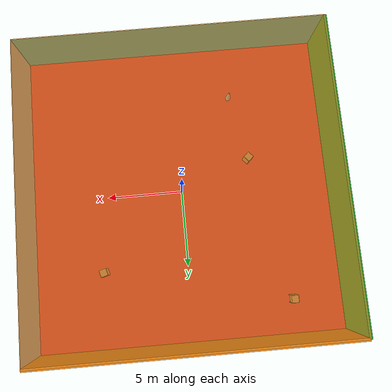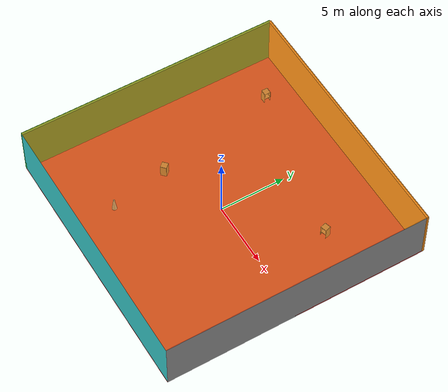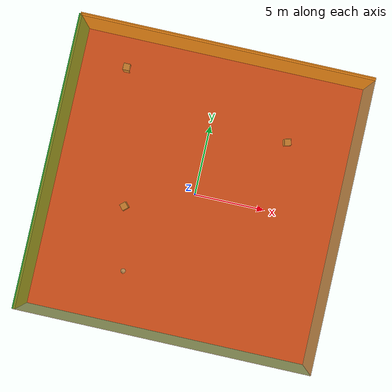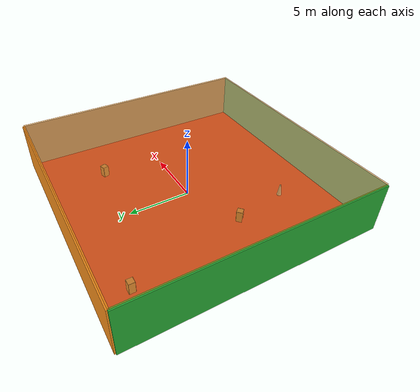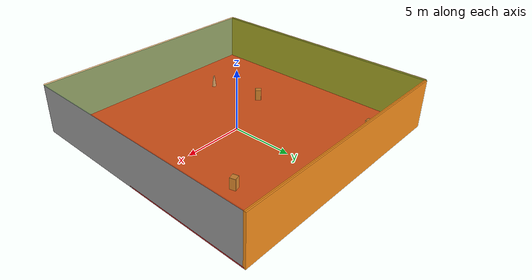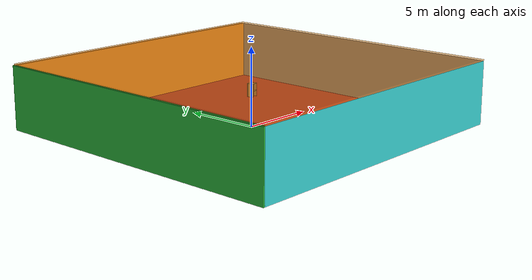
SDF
<sdf version="1.4">
 <world name="default">
  <physics type="ode">
   <max_step_size>0.001</max_step_size>
   <real_time_factor>1</real_time_factor>
   <real_time_update_rate>1000</real_time_update_rate>
   <gravity>0 0 -9.8</gravity>
  </physics>
  <scene><ambient>0.4 0.4 0.4 1</ambient><background>0.7 0.7 0.7 1</background><shadows>1</shadows></scene>
  <model name="Surrounding">
   <static>1</static>
   <link name="Ceiling">
    <collision name="Ceiling_Collision"><geometry><box><size>20 20 0.1</size></box></geometry></collision>
    <visual name="Ceiling_Visual">
     <geometry><box><size>20 20 0.1</size></box></geometry>
     <material>
      <script>
       <uri>file://media/materials/scripts/gazebo.material</uri>
       <name>Gazebo/OrangeTransparent</name>
      </script>
     </material>
    </visual>
    <pose>0 0 4.05 0 0 0</pose>
   </link>
   <link name="Wall_South">
    <collision name="Wall_South_Collision">
     <geometry><box><size>20 0 4</size></box></geometry>
     <pose>0 0 2 0 -0 0</pose>
    </collision>
    <visual name="Wall_South_Visual">
     <pose>0 0 2 0 -0 0</pose>
     <geometry><box><size>20 0 4</size></box></geometry>
     <material>
      <script>
       <uri>file://media/materials/scripts/gazebo.material</uri>
       <name>Gazebo/TurquoiseGlowOutline</name>
      </script>
     </material>
    </visual>
    <velocity_decay><linear>0</linear><angular>0</angular></velocity_decay>
    <pose>0 -10 0 0 -0 0</pose>
   </link>
   <link name="Wall_East">
    <collision name="Wall_21_Collision">
     <geometry><box><size>20 0 4</size></box></geometry>
     <pose>0 0 2 0 -0 0</pose>
    </collision>
    <visual name="Wall_21_Visual">
     <pose>0 0 2 0 -0 0</pose>
     <geometry><box><size>20 0 4</size></box></geometry>
     <material>
      <script><uri>file://media/materials/scripts/gazebo.material</uri><name>Gazebo/Grey</name></script>
     </material>
    </visual>
    <velocity_decay><linear>0</linear><angular>0</angular></velocity_decay>
    <pose>10 0 0 0 -0 1.5708</pose>
   </link>
   <link name="Wall_North">
    <collision name="Wall_22_Collision">
     <geometry><box><size>20 0.2 4</size></box></geometry>
     <pose>0 0 2 0 -0 0</pose>
    </collision>
    <visual name="Wall_22_Visual">
     <pose>0 0 2 0 -0 0</pose>
     <geometry><box><size>20 0.2 4</size></box></geometry>
     <material>
      <script><uri>file://media/materials/scripts/gazebo.material</uri><name>Gazebo/Orange</name></script>
     </material>
    </visual>
    <velocity_decay><linear>0</linear><angular>0</angular></velocity_decay>
    <pose>0 10 0 0 -0 0</pose>
   </link>
   <link name="Wall_West">
    <collision name="Wall_23_Collision">
     <geometry><box><size>20 0.2 4</size></box></geometry>
     <pose>0 0 2 0 -0 0</pose>
    </collision>
    <visual name="Wall_23_Visual">
     <pose>0 0 2 0 -0 0</pose>
     <geometry><box><size>20 0.2 4</size></box></geometry>
     <material>
      <script><uri>file://media/materials/scripts/gazebo.material</uri><name>Gazebo/Green</name></script>
     </material>
    </visual>
    <velocity_decay><linear>0</linear><angular>0</angular></velocity_decay>
    <pose>-10 0 0 0 0 -1.5708</pose>
   </link>
   <link name="Ground_link">
    <collision name="collision">
     <pose>0 0 .05 0 -0 0</pose>
     <geometry><box><size>20 20 0.1</size></box></geometry>
    </collision>
    <visual name="visual">
     <pose>0 0 .05 0 -0 0</pose>
     <geometry><box><size>20 20 0.1</size></box></geometry>
     <material>
      <script><uri>file://media/materials/scripts/gazebo.material</uri><name>Gazebo/Red</name></script>
     </material>
    </visual>
   </link>
   <static>1</static>
  </model>
  <spherical_coordinates>
   <surface_model>EARTH_WGS84</surface_model>
   <latitude_deg>0</latitude_deg>
   <longitude_deg>0</longitude_deg>
   <elevation>0</elevation>
   <heading_deg>0</heading_deg>
  </spherical_coordinates>
  <light name="lightball_0" type="diffuse">
   <diffuse>0.8 0.8 0.8 1</diffuse>
   <specular>0.2 0.2 0.2 1</specular>
   <attenuation>
    <range>100</range>
    <constant>0.7</constant>
    <linear>0.01</linear>
    <quadratic>0.001</quadratic>
   </attenuation>
   <direction>-0.5 0.1 -0.9</direction>
   <pose>1.54663971415 5.52165784857 0.848163965952 0 0 0</pose>
  </light>
  <light name="lightball_1" type="diffuse">
   <diffuse>0.8 0.8 0.8 1</diffuse>
   <specular>0.2 0.2 0.2 1</specular>
   <attenuation>
    <range>100</range>
    <constant>0.7</constant>
    <linear>0.01</linear>
    <quadratic>0.001</quadratic>
   </attenuation>
   <direction>-0.5 0.1 -0.9</direction>
   <pose>-3.11740412043 1.75671627255 3.77361160213 0 0 0</pose>
  </light>
  <light name="lightball_2" type="diffuse">
   <diffuse>0.8 0.8 0.8 1</diffuse>
   <specular>0.2 0.2 0.2 1</specular>
   <attenuation>
    <range>100</range>
    <constant>0.7</constant>
    <linear>0.01</linear>
    <quadratic>0.001</quadratic>
   </attenuation>
   <direction>-0.5 0.1 -0.9</direction>
   <pose>-0.0111624488018 -3.84451662819 3.15638224729 0 0 0</pose>
  </light>
  <light name="lightball_3" type="diffuse">
   <diffuse>0.8 0.8 0.8 1</diffuse>
   <specular>0.2 0.2 0.2 1</specular>
   <attenuation>
    <range>100</range>
    <constant>0.7</constant>
    <linear>0.01</linear>
    <quadratic>0.001</quadratic>
   </attenuation>
   <direction>-0.5 0.1 -0.9</direction>
   <pose>-3.06356077576 1.00328984335 2.20716545985 0 0 0</pose>
  </light>
  <light name="lightball_4" type="diffuse">
   <diffuse>0.8 0.8 0.8 1</diffuse>
   <specular>0.2 0.2 0.2 1</specular>
   <attenuation>
    <range>100</range>
    <constant>0.7</constant>
    <linear>0.01</linear>
    <quadratic>0.001</quadratic>
   </attenuation>
   <direction>-0.5 0.1 -0.9</direction>
   <pose>-6.68753244546 2.62568548411 0.965176831099 0 0 0</pose>
  </light>
  <light name="lightball_5" type="diffuse">
   <diffuse>0.8 0.8 0.8 1</diffuse>
   <specular>0.2 0.2 0.2 1</specular>
   <attenuation>
    <range>100</range>
    <constant>0.7</constant>
    <linear>0.01</linear>
    <quadratic>0.001</quadratic>
   </attenuation>
   <direction>-0.5 0.1 -0.9</direction>
   <pose>-5.55150627326 -8.89926798424 2.92315162695 0 0 0</pose>
  </light>
  <light name="lightball_6" type="diffuse">
   <diffuse>0.8 0.8 0.8 1</diffuse>
   <specular>0.2 0.2 0.2 1</specular>
   <attenuation>
    <range>100</range>
    <constant>0.7</constant>
    <linear>0.01</linear>
    <quadratic>0.001</quadratic>
   </attenuation>
   <direction>-0.5 0.1 -0.9</direction>
   <pose>2.64891602049 -2.1295646128 2.2556215779 0 0 0</pose>
  </light>
  <include><uri>model://cabinet</uri><pose>-6.63126865159 7.66617562731 0 0 0 3.13936208008</pose></include>
  <include>
   <uri>model://construction_cone</uri>
   <pose>-3.78097168034 -6.3527224209 0 0 0 2.06066746963</pose>
  </include>
  <include><uri>model://cabinet</uri><pose>-4.65692199172 -1.87344078314 0 0 0 0.739113127121</pose></include>
  <include><uri>model://cabinet</uri><pose>5.50763683697 4.97806567061 0 0 0 1.8535115652</pose></include>
 </world>
</sdf>

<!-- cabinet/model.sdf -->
<sdf version="1.5">
  <model name="cabinet">
    <static>true</static>
    <link name="cabinet_bottom_plate">
      <inertial>
        <pose>0 0 -1 0 0 0</pose>
        <inertia>
          <ixx>2.050000</ixx>
          <ixy>0</ixy>
          <ixz>0</ixz>
          <iyy>2.050000</iyy>
          <iyz>0</iyz>
          <izz>2.050000</izz>
        </inertia>
        <mass>25.000000</mass>
      </inertial>
      <collision name="cabinet_bottom_plate_geom">
        <pose>0 0 0.010000 0 0 0</pose>
        <geometry>
          <box>
            <size>0.450000 0.450000 0.020000</size>
          </box>
        </geometry>
      </collision>
      <visual name="cabinet_bottom_plate_geom_visual">
        <pose>0 0 0.010000 0 0 0</pose>
        <geometry>
          <box>
            <size>0.450000 0.450000 0.020000</size>
          </box>
        </geometry>
        <material>
          <script>
            <uri>model://media/materials/scripts/gazebo.material</uri>
            <name>Gazebo/Wood</name>
          </script>
        </material>
      </visual>
      <collision name="cabinet_bottom_plate_geom_cabinet_back_plate">
        <pose>0.235000 0 0.510000 0 0 0</pose>
        <geometry>
          <box>
            <size>0.020000 0.450000 1.020000</size>
          </box>
        </geometry>
      </collision>
      <visual name="cabinet_bottom_plate_geom_cabinet_back_plate_visual">
        <pose>0.235000 0 0.510000 0 0 0</pose>
        <geometry>
          <box>
            <size>0.020000 0.450000 1.020000</size>
          </box>
        </geometry>
        <material>
          <script>
            <uri>model://media/materials/scripts/gazebo.material</uri>
            <name>Gazebo/Wood</name>
          </script>
        </material>
      </visual>
      <collision name="cabinet_bottom_plate_geom_cabinet_left_plate">
        <pose>0 0.235000 0.510000 0 0 0</pose>
        <geometry>
          <box>
            <size>0.450000 0.020000 1.020000</size>
          </box>
        </geometry>
      </collision>
      <visual name="cabinet_bottom_plate_geom_cabinet_left_plate_visual">
        <pose>0 0.235000 0.510000 0 0 0</pose>
        <geometry>
          <box>
            <size>0.450000 0.020000 1.020000</size>
          </box>
        </geometry>
        <material>
          <script>
            <uri>model://media/materials/scripts/gazebo.material</uri>
            <name>Gazebo/Wood</name>
          </script>
        </material>
      </visual>
      <collision name="cabinet_bottom_plate_geom_cabinet_middle_plate">
        <pose>0 0 0.510000 0 0 0</pose>
        <geometry>
          <box>
            <size>0.450000 0.450000 0.020000</size>
          </box>
        </geometry>
      </collision>
      <visual name="cabinet_bottom_plate_geom_cabinet_middle_plate_visual">
        <pose>0 0 0.510000 0 0 0</pose>
        <geometry>
          <box>
            <size>0.450000 0.450000 0.020000</size>
          </box>
        </geometry>
        <material>
          <script>
            <uri>model://media/materials/scripts/gazebo.material</uri>
            <name>Gazebo/Wood</name>
          </script>
        </material>
      </visual>
      <collision name="cabinet_bottom_plate_geom_cabinet_right_plate">
        <pose>0 -0.235000 0.510000 0 0 0</pose>
        <geometry>
          <box>
            <size>0.450000 0.020000 1.020000</size>
          </box>
        </geometry>
      </collision>
      <visual name="cabinet_bottom_plate_geom_cabinet_right_plate_visual">
        <pose>0 -0.235000 0.510000 0 0 0</pose>
        <geometry>
          <box>
            <size>0.450000 0.020000 1.020000</size>
          </box>
        </geometry>
        <material>
          <script>
            <uri>model://media/materials/scripts/gazebo.material</uri>
            <name>Gazebo/Wood</name>
          </script>
        </material>
      </visual>
      <collision name="cabinet_bottom_plate_geom_cabinet_top_plate">
        <pose>0 0 1.010000 0 0 0</pose>
        <geometry>
          <box>
            <size>0.450000 0.450000 0.020000</size>
          </box>
        </geometry>
      </collision>
      <visual name="cabinet_bottom_plate_geom_cabinet_top_plate_visual">
        <pose>0 0 1.010000 0 0 0</pose>
        <geometry>
          <box>
            <size>0.450000 0.450000 0.020000</size>
          </box>
        </geometry>
        <material>
          <script>
            <uri>model://media/materials/scripts/gazebo.material</uri>
            <name>Gazebo/Wood</name>
          </script>
        </material>
      </visual>
    </link>
  </model>
</sdf>

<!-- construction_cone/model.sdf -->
<sdf version="1.5">
  <model name="Construction Cone">
    <link name="link">
      <collision name="collision">
        <geometry>
          <mesh>
            <scale>10 10 10</scale>
            <uri>file://isr-testbed/construction_cone/meshes/construction_cone.dae</uri>
          </mesh>
        </geometry>
      </collision>
      <visual name="visual">
        <geometry>
          <mesh>
            <scale>10 10 10</scale>
            <uri>file://isr-testbed/construction_cone/meshes/construction_cone.dae</uri>
          </mesh>
        </geometry>
      </visual>
    </link>
  </model>
</sdf>
